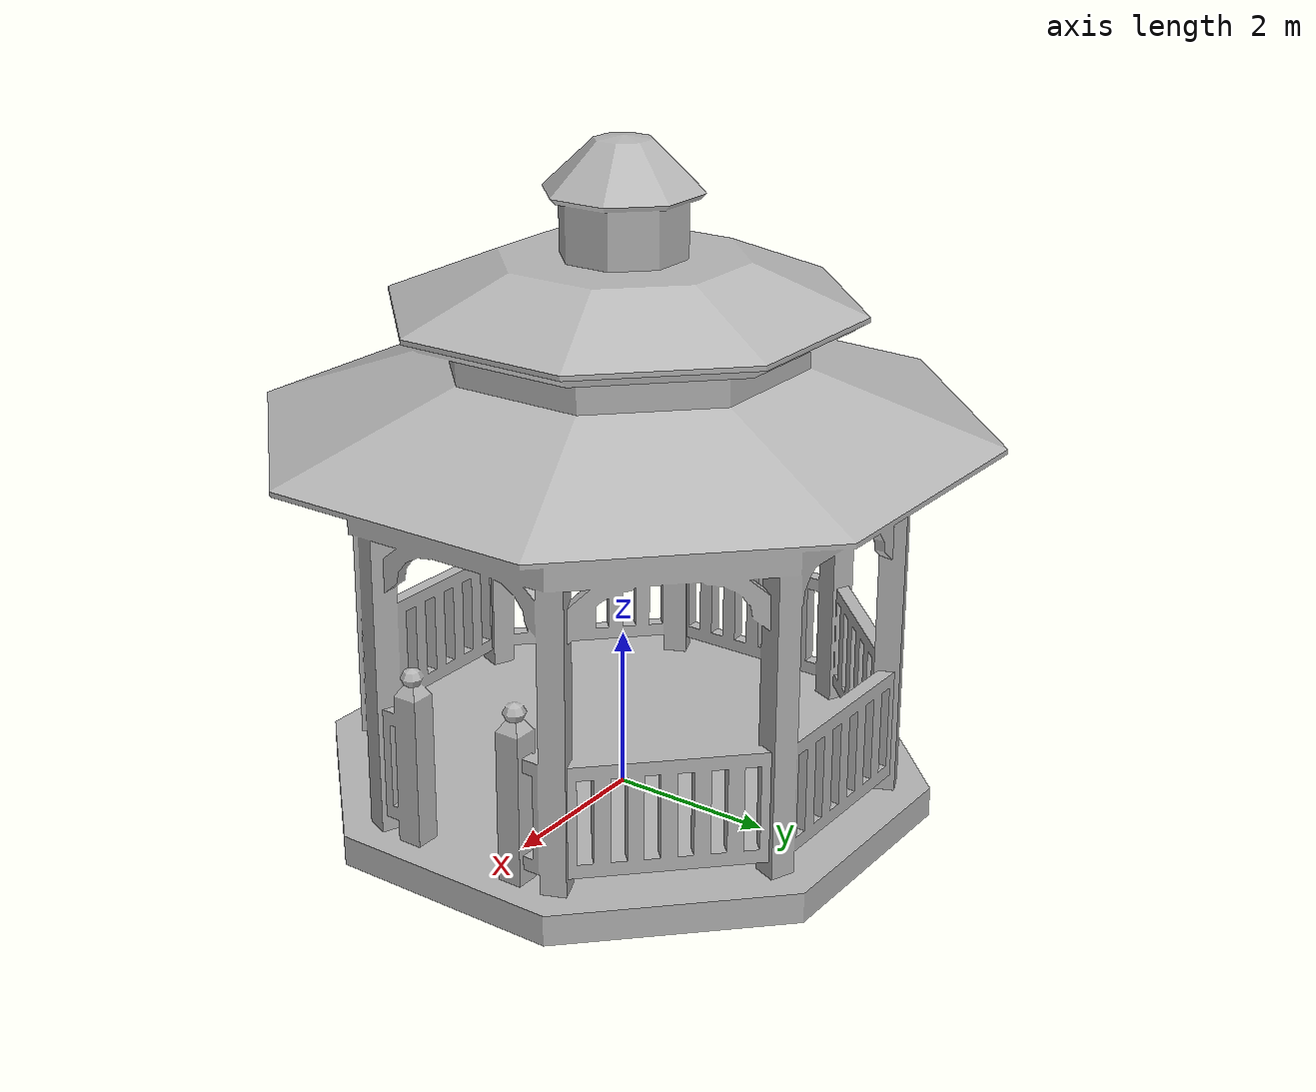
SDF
<?xml version="1.0" ?>
<sdf version="1.6">
  <model name="gazebo">
    <static>true</static>
    <link name="link">
      <collision name="collision">
        <geometry>
          <mesh>
            <scale>3 3 2.5</scale>
            <uri>model://gazebo/meshes/gazebo.dae</uri>
          </mesh>
        </geometry>
      </collision>
      <visual name="visual">
        <geometry>
          <mesh>
            <scale>3 3 2.5</scale>
            <uri>model://gazebo/meshes/gazebo.dae</uri>
          </mesh>
        </geometry>
      </visual>
    </link>
  </model>
</sdf>
